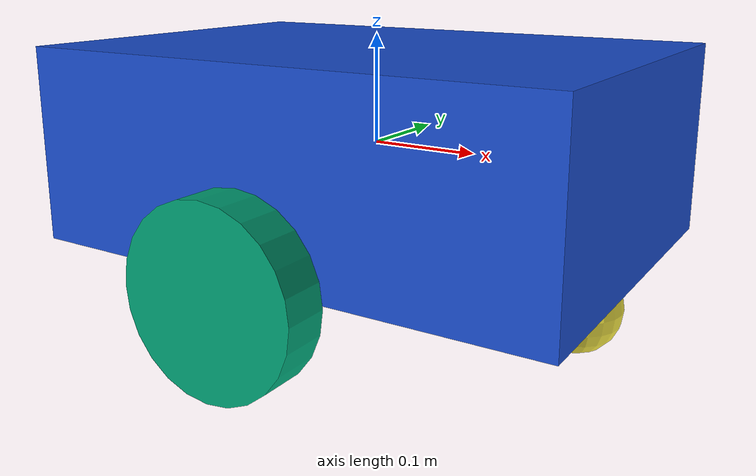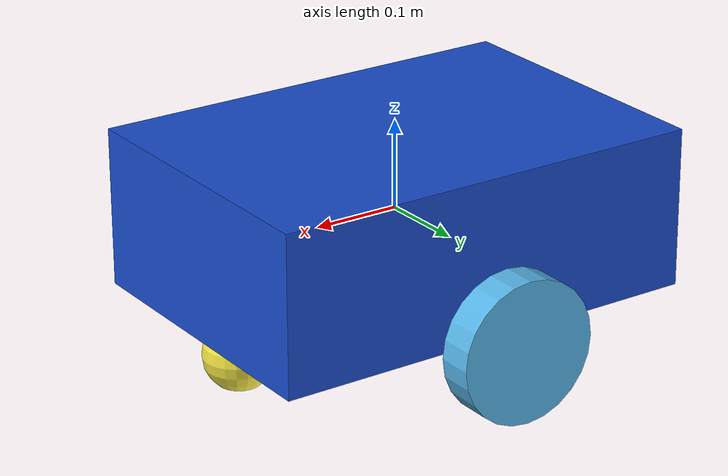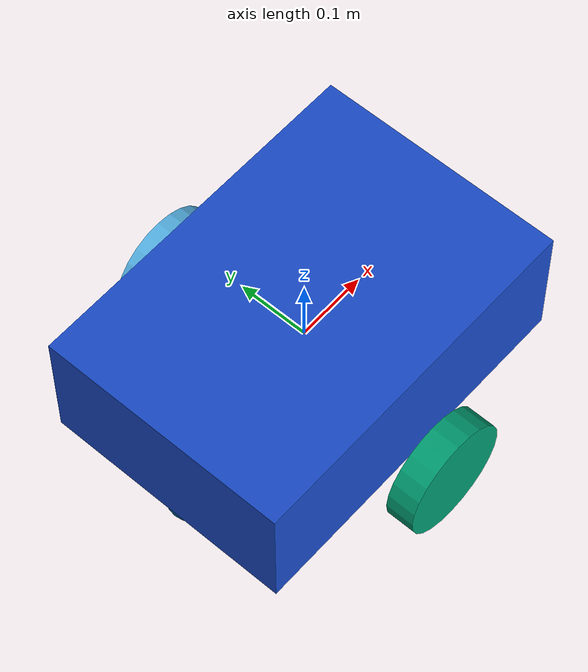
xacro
<?xml version="1.0"?>
<robot name="delivery" xmlns:xacro="http://www.ros.org/wiki/xacro">
  <link name="base_link">
    <visual><geometry><box size="0.5 0.35 0.18"/></geometry><material name="blue"><color rgba="0.1 0.3 0.8 1"/></material></visual>
    <collision><geometry><box size="0.5 0.35 0.18"/></geometry></collision>
    <inertial><mass value="12"/><inertia ixx="0.155" iyy="0.282" izz="0.373" ixy="0" ixz="0" iyz="0"/></inertial>
  </link>
  <xacro:macro name="wheel" params="side y">
    <link name="${side}_wheel">
      <visual><origin rpy="1.57079632679 0 0"/><geometry><cylinder radius="0.08" length="0.04"/></geometry></visual>
      <collision><origin rpy="1.57079632679 0 0"/><geometry><cylinder radius="0.08" length="0.04"/></geometry></collision>
      <inertial><mass value="0.5"/><inertia ixx="0.000867" iyy="0.0016" izz="0.000867" ixy="0" ixz="0" iyz="0"/></inertial>
    </link>
    <joint name="${side}_wheel_joint" type="continuous"><parent link="base_link"/><child link="${side}_wheel"/><origin xyz="0 ${y} -0.08"/><axis xyz="0 1 0"/><limit effort="10" velocity="15"/></joint>
    <gazebo reference="${side}_wheel"><mu1>1</mu1><mu2>1</mu2></gazebo>
  </xacro:macro>
  <xacro:wheel side="left" y="0.22"/><xacro:wheel side="right" y="-0.22"/>
  <xacro:macro name="caster" params="name x">
    <link name="${name}"><visual><geometry><sphere radius="0.04"/></geometry></visual><collision><geometry><sphere radius="0.04"/></geometry></collision><inertial><mass value="0.1"/><inertia ixx="0.000064" iyy="0.000064" izz="0.000064" ixy="0" ixz="0" iyz="0"/></inertial></link>
    <joint name="${name}_joint" type="fixed"><parent link="base_link"/><child link="${name}"/><origin xyz="${x} 0 -0.12"/></joint>
    <gazebo reference="${name}"><mu1>0.001</mu1><mu2>0.001</mu2></gazebo>
  </xacro:macro>
  <xacro:caster name="front_caster" x="0.2"/><xacro:caster name="rear_caster" x="-0.2"/>
  <link name="laser"/><joint name="laser_joint" type="fixed"><parent link="base_link"/><child link="laser"/><origin xyz="0.12 0 0.16"/></joint>
  <link name="camera_link"/><joint name="camera_joint" type="fixed"><parent link="base_link"/><child link="camera_link"/><origin xyz="0.25 0 0.12"/></joint>
  <link name="camera_optical_frame"/><joint name="camera_optical_joint" type="fixed"><parent link="camera_link"/><child link="camera_optical_frame"/><origin rpy="-1.57079632679 0 -1.57079632679"/></joint>
  <gazebo reference="laser"><sensor name="lidar" type="gpu_lidar"><topic>/scan</topic><update_rate>10</update_rate><gz_frame_id>laser</gz_frame_id><lidar><scan><horizontal><samples>360</samples><resolution>1</resolution><min_angle>-3.14159</min_angle><max_angle>3.14159</max_angle></horizontal></scan><range><min>0.12</min><max>12</max><resolution>0.01</resolution></range></lidar></sensor></gazebo>
  <gazebo reference="camera_link"><sensor name="rgbd" type="rgbd_camera"><topic>/camera</topic><update_rate>10</update_rate><gz_frame_id>camera_optical_frame</gz_frame_id><camera><horizontal_fov>1.047</horizontal_fov><image><width>320</width><height>240</height><format>R8G8B8</format></image><clip><near>0.1</near><far>10</far></clip></camera></sensor></gazebo>
  <gazebo>
    <plugin filename="gz-sim-diff-drive-system" name="gz::sim::systems::DiffDrive"><left_joint>left_wheel_joint</left_joint><right_joint>right_wheel_joint</right_joint><wheel_separation>0.44</wheel_separation><wheel_radius>0.08</wheel_radius><topic>/cmd_vel</topic><odom_topic>/odom</odom_topic><tf_topic>/tf</tf_topic><frame_id>odom</frame_id><child_frame_id>base_link</child_frame_id><odom_publish_frequency>30</odom_publish_frequency></plugin>
    <plugin filename="gz-sim-joint-state-publisher-system" name="gz::sim::systems::JointStatePublisher"><topic>/joint_states</topic></plugin>
  </gazebo>
</robot>
